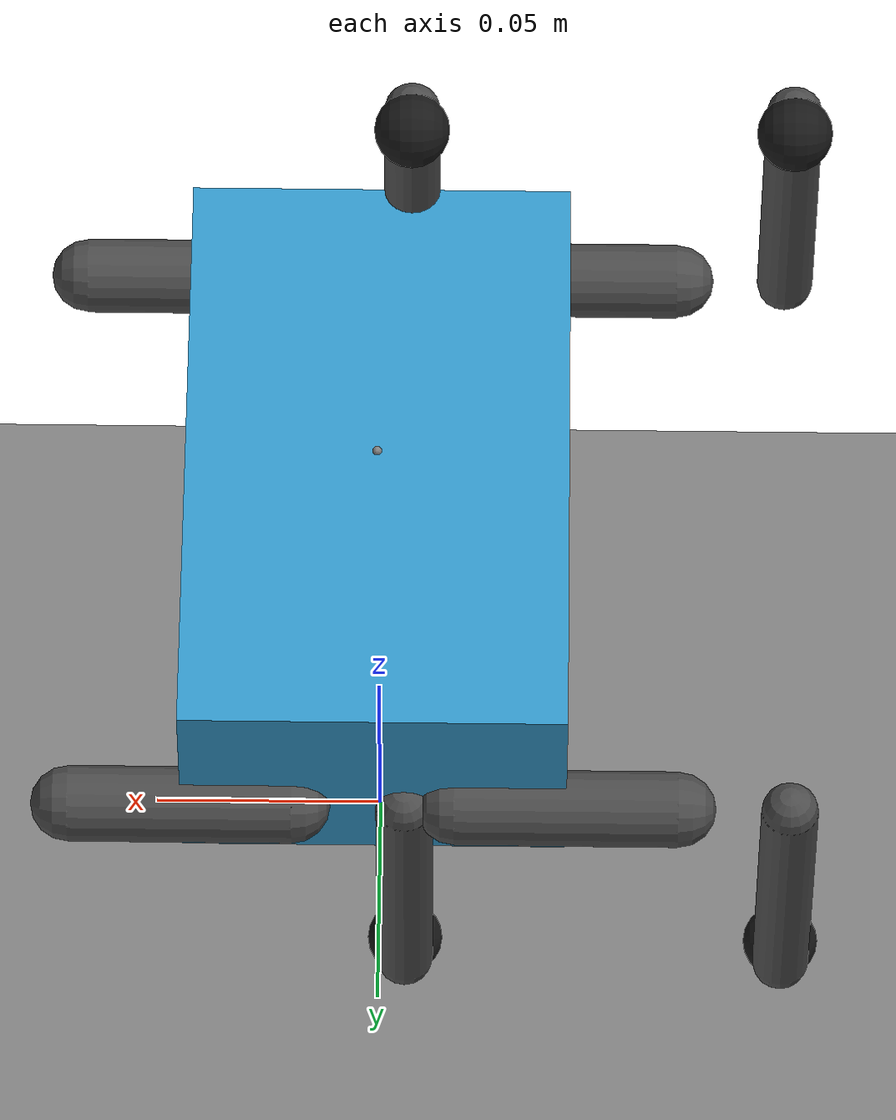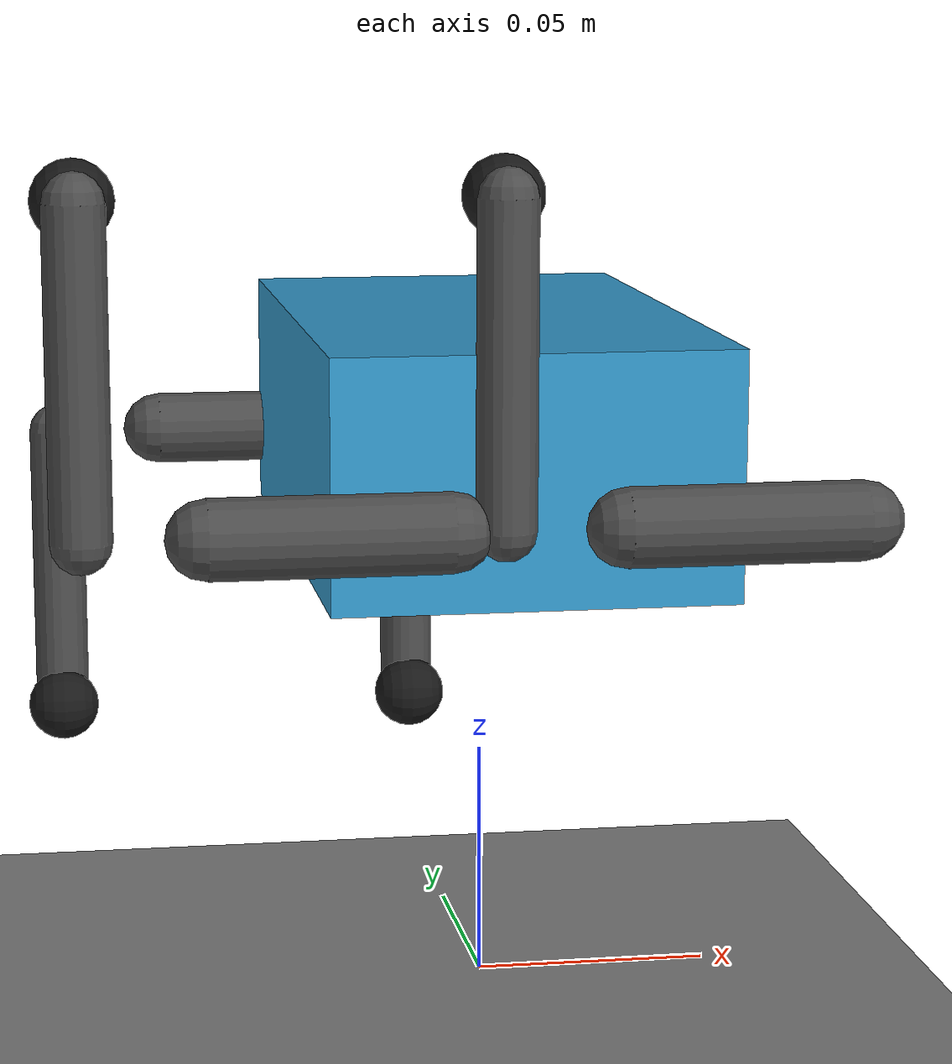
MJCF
<mujoco model="pidog_quadruped">
  <compiler angle="radian" meshdir="../meshes" autolimits="true"/>

  <option timestep="0.001" iterations="50" solver="Newton" tolerance="1e-10"/>

  <!-- Physics and rendering settings -->
  <visual>
    <headlight ambient="0.5 0.5 0.5"/>
    <rgba haze="0.15 0.25 0.35 1"/>
    <global offwidth="640" offheight="480"/>
  </visual>

  <asset>
    <!-- Materials for visualization -->
    <material name="body_mat" rgba="0.2 0.6 0.8 1"/>
    <material name="leg_mat" rgba="0.3 0.3 0.3 1"/>
    <material name="foot_mat" rgba="0.1 0.1 0.1 1"/>
    <material name="ground_mat" rgba="0.5 0.5 0.5 1"/>
  </asset>

  <default>
    <joint damping="0.5" armature="0.001"/>
    <geom contype="1" conaffinity="1" condim="3" friction="0.8 0.005 0.0001"/>
    <motor ctrllimited="true" ctrlrange="-1.57 1.57"/>
  </default>

  <worldbody>
    <!-- Ground plane -->
    <geom name="ground" type="plane" size="10 10 0.1" material="ground_mat"
          friction="1.0 0.005 0.0001" solimp="0.9 0.95 0.001" solref="0.002 1"/>

    <!-- Lighting -->
    <light directional="true" diffuse="0.6 0.6 0.6" specular="0.3 0.3 0.3"
           pos="0 0 4" dir="0 0 -1" castshadow="false"/>
    <light directional="true" diffuse="0.4 0.4 0.4" specular="0.1 0.1 0.1"
           pos="0 0 4" dir="0 0 -1"/>

    <!-- Robot body -->
    <body name="body" pos="0 0 0.12">
      <freejoint/>
      <geom name="body_geom" type="box" size="0.0405 0.06685 0.025"
            material="body_mat" mass="0.300"/>

      <!-- IMU sensor site (center of body, slightly above) -->
      <site name="imu_site" pos="0 0 0.025" size="0.001"/>

      <!-- BACK RIGHT LEG - Actual dimensions from URDF -->
      <body name="back_right_leg_b" pos="-0.0405 0.06685 -0.009" euler="0 1.57 0">
        <joint name="body_to_back_right_leg_b" type="hinge" axis="0 0 1"
               range="-1.57 1.57" damping="0.5"/>
        <!-- Shoulder segment: 47mm long -->
        <geom name="br_shoulder" type="capsule" size="0.008 0.0235"
              material="leg_mat" mass="0.010"/>

        <body name="back_right_leg_a" pos="0 0 -0.047" euler="0 3.1415 0">
          <joint name="back_right_leg_b_to_a" type="hinge" axis="0 1 0"
                 range="-1.57 1.57" damping="0.5"/>
          <!-- Knee segment: 63.5mm long -->
          <geom name="br_knee" type="capsule" size="0.006 0.03175"
                fromto="0 0 0 -0.0635 0 0" material="leg_mat" mass="0.010"/>

          <!-- Foot contact point -->
          <body name="back_right_foot" pos="-0.0635 -0.005 0">
            <geom name="br_foot" type="sphere" size="0.008"
                  material="foot_mat" mass="0.003" friction="0.8 0.005 0.0001"/>
            <site name="br_foot_site" pos="0 0 0" size="0.001"/>
          </body>
        </body>
      </body>

      <!-- FRONT RIGHT LEG -->
      <body name="front_right_leg_b" pos="0.0405 0.06685 -0.009" euler="0 1.57 0">
        <joint name="body_to_front_right_leg_b" type="hinge" axis="0 0 1"
               range="-1.57 1.57" damping="0.5"/>
        <geom name="fr_shoulder" type="capsule" size="0.008 0.0235"
              material="leg_mat" mass="0.010"/>

        <body name="front_right_leg_a" pos="0 0 -0.047" euler="0 3.1415 0">
          <joint name="front_right_leg_b_to_a" type="hinge" axis="0 1 0"
                 range="-1.57 1.57" damping="0.5"/>
          <geom name="fr_knee" type="capsule" size="0.006 0.03175"
                fromto="0 0 0 -0.0635 0 0" material="leg_mat" mass="0.010"/>

          <body name="front_right_foot" pos="-0.0635 -0.005 0">
            <geom name="fr_foot" type="sphere" size="0.008"
                  material="foot_mat" mass="0.003" friction="0.8 0.005 0.0001"/>
            <site name="fr_foot_site" pos="0 0 0" size="0.001"/>
          </body>
        </body>
      </body>

      <!-- BACK LEFT LEG -->
      <body name="back_left_leg_b" pos="-0.0405 -0.06685 -0.009" euler="0 1.57 3.1415">
        <joint name="body_to_back_left_leg_b" type="hinge" axis="0 0 1"
               range="-1.57 1.57" damping="0.5"/>
        <geom name="bl_shoulder" type="capsule" size="0.008 0.0235"
              material="leg_mat" mass="0.010"/>

        <body name="back_left_leg_a" pos="0 0 -0.047" euler="0 3.1415 0">
          <joint name="back_left_leg_b_to_a" type="hinge" axis="0 1 0"
                 range="-1.57 1.57" damping="0.5"/>
          <geom name="bl_knee" type="capsule" size="0.006 0.03175"
                fromto="0 0 0 -0.0635 0 0" material="leg_mat" mass="0.010"/>

          <body name="back_left_foot" pos="-0.0635 -0.005 0">
            <geom name="bl_foot" type="sphere" size="0.008"
                  material="foot_mat" mass="0.003" friction="0.8 0.005 0.0001"/>
            <site name="bl_foot_site" pos="0 0 0" size="0.001"/>
          </body>
        </body>
      </body>

      <!-- FRONT LEFT LEG -->
      <body name="front_left_leg_b" pos="0.0405 -0.06685 -0.009" euler="0 1.57 3.1415">
        <joint name="body_to_front_left_leg_b" type="hinge" axis="0 0 1"
               range="-1.57 1.57" damping="0.5"/>
        <!-- Shoulder segment: 47mm long -->
        <geom name="fl_shoulder" type="capsule" size="0.008 0.0235"
              material="leg_mat" mass="0.010"/>

        <body name="front_left_leg_a" pos="0 0 -0.047" euler="0 3.1415 0">
          <joint name="front_left_leg_b_to_a" type="hinge" axis="0 1 0"
                 range="-1.57 1.57" damping="0.5"/>
          <!-- Knee segment: 63.5mm long -->
          <geom name="fl_knee" type="capsule" size="0.006 0.03175"
                fromto="0 0 0 -0.0635 0 0" material="leg_mat" mass="0.010"/>

          <!-- Foot contact point -->
          <body name="front_left_foot" pos="-0.0635 -0.005 0">
            <geom name="fl_foot" type="sphere" size="0.008"
                  material="foot_mat" mass="0.003" friction="0.8 0.005 0.0001"/>
            <site name="fl_foot_site" pos="0 0 0" size="0.001"/>
          </body>
        </body>
      </body>

    </body>
  </worldbody>

  <!-- Actuators (position control) -->
  <actuator>
    <!-- Back right leg -->
    <position name="act_br_shoulder" joint="body_to_back_right_leg_b"
              kp="8.0" kv="2.5" forcerange="-0.15 0.15"/>
    <position name="act_br_knee" joint="back_right_leg_b_to_a"
              kp="8.0" kv="2.5" forcerange="-0.15 0.15"/>

    <!-- Front right leg -->
    <position name="act_fr_shoulder" joint="body_to_front_right_leg_b"
              kp="8.0" kv="2.5" forcerange="-0.15 0.15"/>
    <position name="act_fr_knee" joint="front_right_leg_b_to_a"
              kp="8.0" kv="2.5" forcerange="-0.15 0.15"/>

    <!-- Back left leg -->
    <position name="act_bl_shoulder" joint="body_to_back_left_leg_b"
              kp="8.0" kv="2.5" forcerange="-0.15 0.15"/>
    <position name="act_bl_knee" joint="back_left_leg_b_to_a"
              kp="8.0" kv="2.5" forcerange="-0.15 0.15"/>

    <!-- Front left leg -->
    <position name="act_fl_shoulder" joint="body_to_front_left_leg_b"
              kp="8.0" kv="2.5" forcerange="-0.15 0.15"/>
    <position name="act_fl_knee" joint="front_left_leg_b_to_a"
              kp="8.0" kv="2.5" forcerange="-0.15 0.15"/>
  </actuator>

  <!-- Sensors -->
  <sensor>
    <!-- IMU sensors on body -->
    <framequat name="imu_orientation" objtype="site" objname="imu_site"/>
    <gyro name="imu_gyro" site="imu_site" noise="0.01"/>
    <accelerometer name="imu_accel" site="imu_site" noise="0.1"/>

    <!-- Joint position sensors -->
    <jointpos name="jp_br_shoulder" joint="body_to_back_right_leg_b"/>
    <jointpos name="jp_br_knee" joint="back_right_leg_b_to_a"/>
    <jointpos name="jp_fr_shoulder" joint="body_to_front_right_leg_b"/>
    <jointpos name="jp_fr_knee" joint="front_right_leg_b_to_a"/>
    <jointpos name="jp_bl_shoulder" joint="body_to_back_left_leg_b"/>
    <jointpos name="jp_bl_knee" joint="back_left_leg_b_to_a"/>
    <jointpos name="jp_fl_shoulder" joint="body_to_front_left_leg_b"/>
    <jointpos name="jp_fl_knee" joint="front_left_leg_b_to_a"/>

    <!-- Joint velocity sensors -->
    <jointvel name="jv_br_shoulder" joint="body_to_back_right_leg_b"/>
    <jointvel name="jv_br_knee" joint="back_right_leg_b_to_a"/>
    <jointvel name="jv_fr_shoulder" joint="body_to_front_right_leg_b"/>
    <jointvel name="jv_fr_knee" joint="front_right_leg_b_to_a"/>
    <jointvel name="jv_bl_shoulder" joint="body_to_back_left_leg_b"/>
    <jointvel name="jv_bl_knee" joint="back_left_leg_b_to_a"/>
    <jointvel name="jv_fl_shoulder" joint="body_to_front_left_leg_b"/>
    <jointvel name="jv_fl_knee" joint="front_left_leg_b_to_a"/>

    <!-- Foot contact sensors -->
    <touch name="contact_br_foot" site="br_foot_site"/>
    <touch name="contact_fr_foot" site="fr_foot_site"/>
    <touch name="contact_bl_foot" site="bl_foot_site"/>
    <touch name="contact_fl_foot" site="fl_foot_site"/>
  </sensor>

</mujoco>
